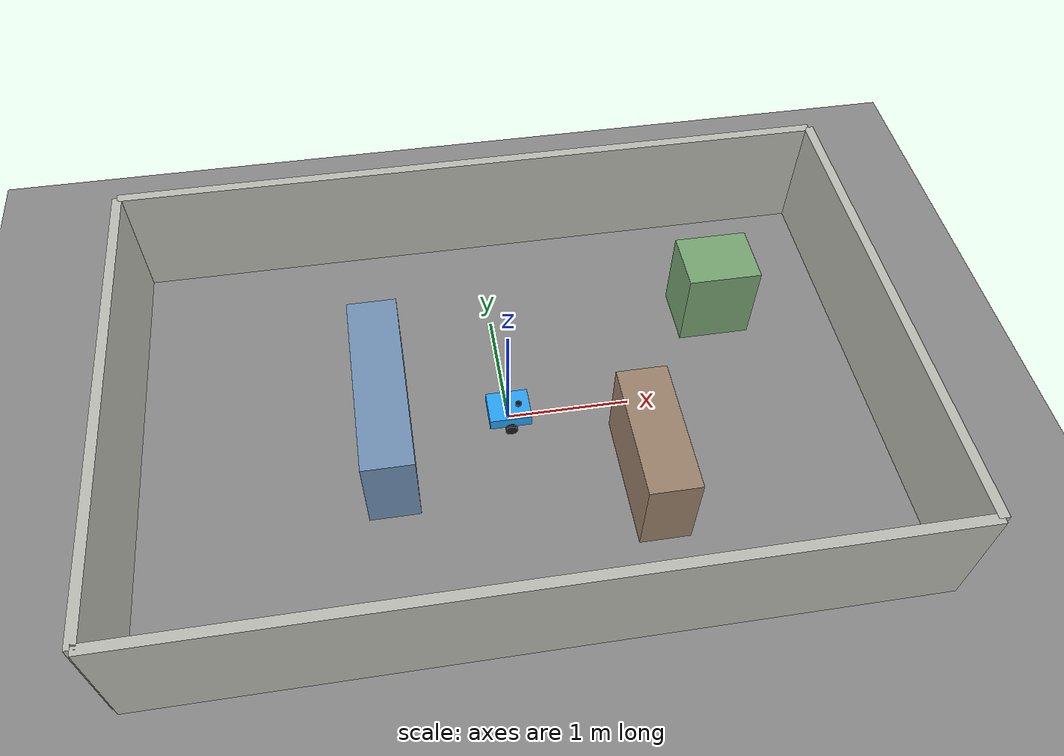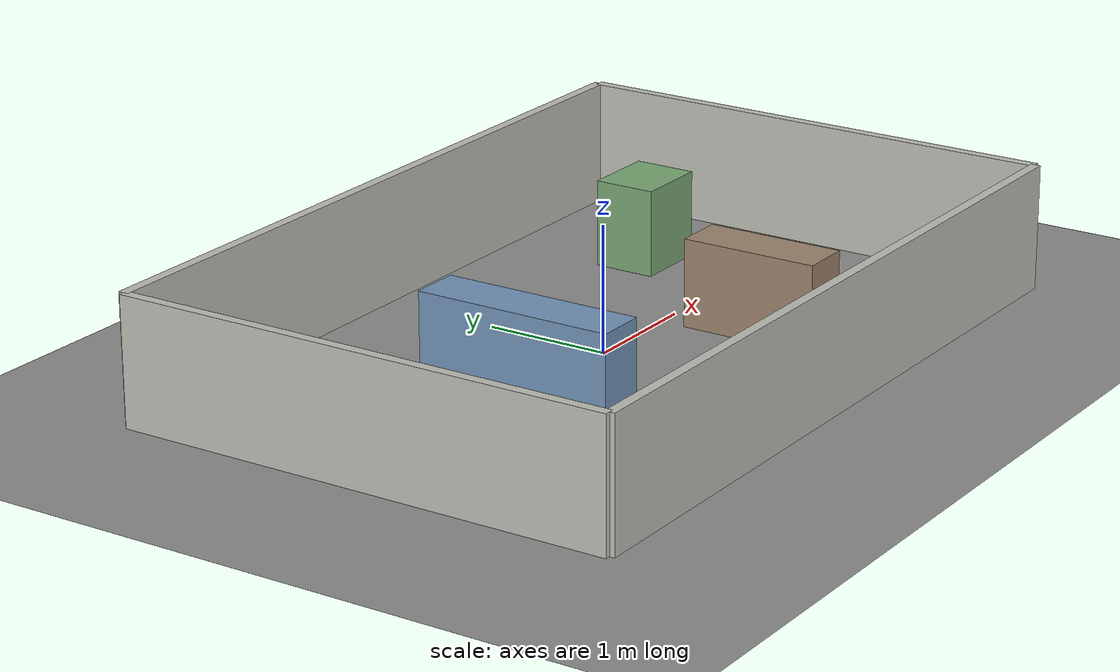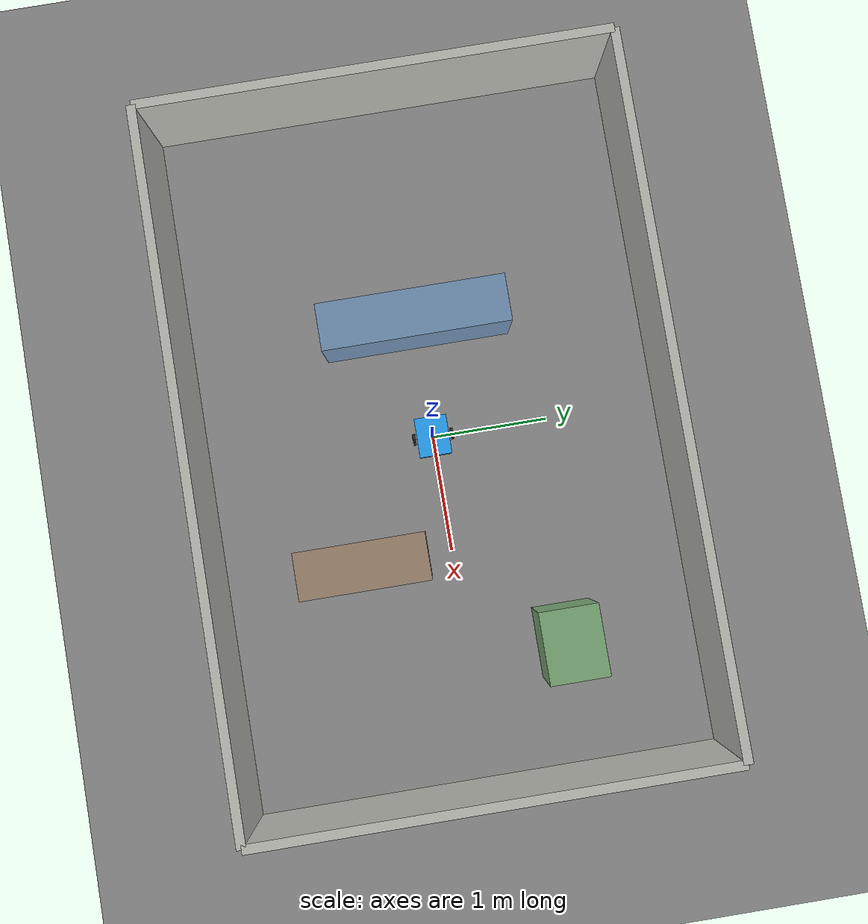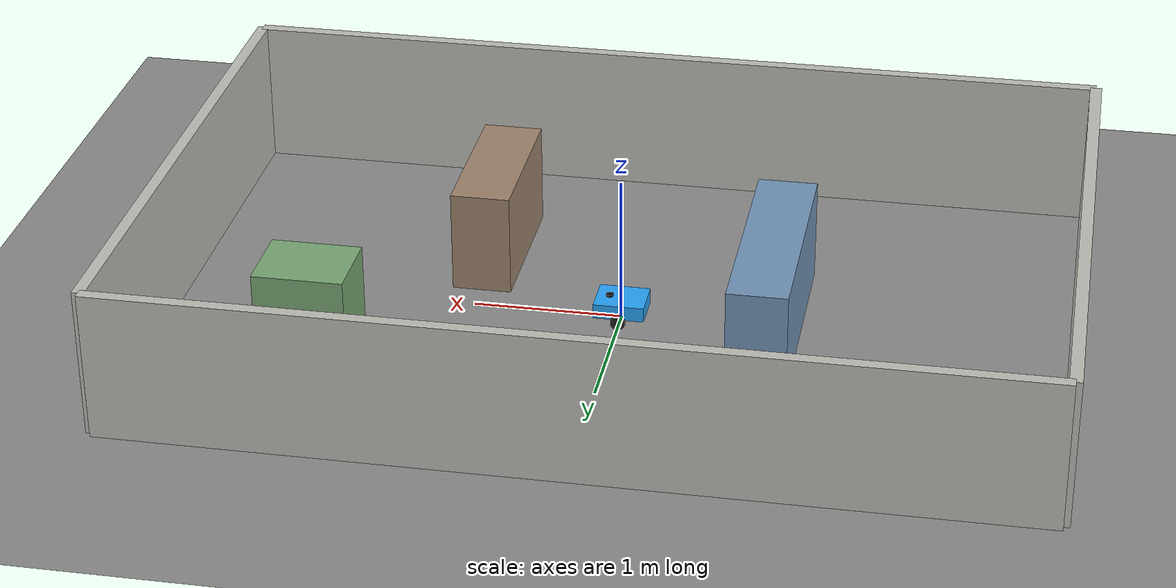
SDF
<?xml version="1.0" ?>
<sdf version="1.10">
  <world name="room">
    <plugin filename="gz-sim-physics-system" name="gz::sim::systems::Physics"/>
    <plugin filename="gz-sim-user-commands-system" name="gz::sim::systems::UserCommands"/>
    <plugin filename="gz-sim-scene-broadcaster-system" name="gz::sim::systems::SceneBroadcaster"/>
    <plugin filename="gz-sim-sensors-system" name="gz::sim::systems::Sensors">
      <render_engine>ogre2</render_engine>
    </plugin>

    <gravity>0 0 -9.81</gravity>
    <magnetic_field>0 0 0</magnetic_field>
    <atmosphere type="adiabatic"/>

    <light name="sun" type="directional">
      <pose>0 0 6 0 0 0</pose>
      <diffuse>0.8 0.8 0.8 1</diffuse>
      <specular>0.2 0.2 0.2 1</specular>
      <direction>-0.5 0.1 -0.9</direction>
    </light>

    <model name="ground_plane">
      <static>true</static>
      <link name="link">
        <collision name="collision">
          <geometry>
            <plane>
              <normal>0 0 1</normal>
              <size>8 6</size>
            </plane>
          </geometry>
        </collision>
        <visual name="visual">
          <geometry>
            <plane>
              <normal>0 0 1</normal>
              <size>8 6</size>
            </plane>
          </geometry>
          <material>
            <ambient>0.55 0.55 0.55 1</ambient>
            <diffuse>0.55 0.55 0.55 1</diffuse>
          </material>
        </visual>
      </link>
    </model>

    <model name="north_wall">
      <static>true</static>
      <pose>0 2 0.5 0 0 0</pose>
      <link name="link">
        <collision name="collision">
          <geometry><box><size>6 0.08 1</size></box></geometry>
        </collision>
        <visual name="visual">
          <geometry><box><size>6 0.08 1</size></box></geometry>
          <material><ambient>0.75 0.75 0.72 1</ambient><diffuse>0.75 0.75 0.72 1</diffuse></material>
        </visual>
      </link>
    </model>

    <model name="south_wall">
      <static>true</static>
      <pose>0 -2 0.5 0 0 0</pose>
      <link name="link">
        <collision name="collision">
          <geometry><box><size>6 0.08 1</size></box></geometry>
        </collision>
        <visual name="visual">
          <geometry><box><size>6 0.08 1</size></box></geometry>
          <material><ambient>0.75 0.75 0.72 1</ambient><diffuse>0.75 0.75 0.72 1</diffuse></material>
        </visual>
      </link>
    </model>

    <model name="east_wall">
      <static>true</static>
      <pose>3 0 0.5 0 0 0</pose>
      <link name="link">
        <collision name="collision">
          <geometry><box><size>0.08 4 1</size></box></geometry>
        </collision>
        <visual name="visual">
          <geometry><box><size>0.08 4 1</size></box></geometry>
          <material><ambient>0.75 0.75 0.72 1</ambient><diffuse>0.75 0.75 0.72 1</diffuse></material>
        </visual>
      </link>
    </model>

    <model name="west_wall">
      <static>true</static>
      <pose>-3 0 0.5 0 0 0</pose>
      <link name="link">
        <collision name="collision">
          <geometry><box><size>0.08 4 1</size></box></geometry>
        </collision>
        <visual name="visual">
          <geometry><box><size>0.08 4 1</size></box></geometry>
          <material><ambient>0.75 0.75 0.72 1</ambient><diffuse>0.75 0.75 0.72 1</diffuse></material>
        </visual>
      </link>
    </model>

    <model name="obstacle_1">
      <static>true</static>
      <pose>-1.0 0 0.35 0 0 0</pose>
      <link name="link">
        <collision name="collision">
          <geometry><box><size>0.4 1.6 0.7</size></box></geometry>
        </collision>
        <visual name="visual">
          <geometry><box><size>0.4 1.6 0.7</size></box></geometry>
          <material><ambient>0.45 0.58 0.72 1</ambient><diffuse>0.45 0.58 0.72 1</diffuse></material>
        </visual>
      </link>
    </model>

    <model name="obstacle_2">
      <static>true</static>
      <pose>1.0 -0.75 0.35 0 0 0</pose>
      <link name="link">
        <collision name="collision">
          <geometry><box><size>0.4 1.1 0.7</size></box></geometry>
        </collision>
        <visual name="visual">
          <geometry><box><size>0.4 1.1 0.7</size></box></geometry>
          <material><ambient>0.62 0.52 0.43 1</ambient><diffuse>0.62 0.52 0.43 1</diffuse></material>
        </visual>
      </link>
    </model>

    <model name="obstacle_3">
      <static>true</static>
      <pose>1.9 0.85 0.35 0 0 0</pose>
      <link name="link">
        <collision name="collision">
          <geometry><box><size>0.6 0.5 0.7</size></box></geometry>
        </collision>
        <visual name="visual">
          <geometry><box><size>0.6 0.5 0.7</size></box></geometry>
          <material><ambient>0.48 0.66 0.46 1</ambient><diffuse>0.48 0.66 0.46 1</diffuse></material>
        </visual>
      </link>
    </model>

    <model name="robotont_proxy">
      <pose>0 0 0 0 0 0</pose>
      <link name="base_footprint">
        <pose>0 0 0 0 0 0</pose>
        <inertial>
          <mass>3.0</mass>
          <inertia>
            <ixx>0.0246</ixx>
            <iyy>0.0208</iyy>
            <izz>0.0432</izz>
          </inertia>
        </inertial>
        <collision name="base_collision">
          <pose>0 0 0.105 0 0 0</pose>
          <geometry><box><size>0.34 0.28 0.10</size></box></geometry>
        </collision>
        <visual name="base_visual">
          <pose>0 0 0.105 0 0 0</pose>
          <geometry><box><size>0.34 0.28 0.10</size></box></geometry>
          <material><ambient>0.16 0.65 0.98 1</ambient><diffuse>0.16 0.65 0.98 1</diffuse></material>
        </visual>
      </link>

      <link name="left_wheel">
        <pose>0 0.165 0.05 1.57079632679 0 0</pose>
        <inertial>
          <mass>0.25</mass>
          <inertia>
            <ixx>0.0002</ixx>
            <iyy>0.0002</iyy>
            <izz>0.0002</izz>
          </inertia>
        </inertial>
        <collision name="collision">
          <geometry><cylinder><radius>0.05</radius><length>0.026</length></cylinder></geometry>
        </collision>
        <visual name="visual">
          <geometry><cylinder><radius>0.05</radius><length>0.026</length></cylinder></geometry>
          <material><ambient>0.12 0.12 0.12 1</ambient><diffuse>0.12 0.12 0.12 1</diffuse></material>
        </visual>
      </link>

      <link name="right_wheel">
        <pose>0 -0.165 0.05 1.57079632679 0 0</pose>
        <inertial>
          <mass>0.25</mass>
          <inertia>
            <ixx>0.0002</ixx>
            <iyy>0.0002</iyy>
            <izz>0.0002</izz>
          </inertia>
        </inertial>
        <collision name="collision">
          <geometry><cylinder><radius>0.05</radius><length>0.026</length></cylinder></geometry>
        </collision>
        <visual name="visual">
          <geometry><cylinder><radius>0.05</radius><length>0.026</length></cylinder></geometry>
          <material><ambient>0.12 0.12 0.12 1</ambient><diffuse>0.12 0.12 0.12 1</diffuse></material>
        </visual>
      </link>

      <link name="base_scan">
        <pose>0.08 0 0.16 0 0 0</pose>
        <inertial>
          <mass>0.05</mass>
          <inertia>
            <ixx>0.00001</ixx>
            <iyy>0.00001</iyy>
            <izz>0.00001</izz>
          </inertia>
        </inertial>
        <visual name="visual">
          <geometry><cylinder><radius>0.025</radius><length>0.02</length></cylinder></geometry>
          <material><ambient>0.05 0.05 0.05 1</ambient><diffuse>0.05 0.05 0.05 1</diffuse></material>
        </visual>
        <sensor name="lidar" type="gpu_lidar">
          <pose>0 0 0 0 0 0</pose>
          <topic>/scan</topic>
          <gz_frame_id>base_scan</gz_frame_id>
          <update_rate>10</update_rate>
          <lidar>
            <scan>
              <horizontal>
                <samples>361</samples>
                <resolution>1</resolution>
                <min_angle>-3.14159265359</min_angle>
                <max_angle>3.14159265359</max_angle>
              </horizontal>
            </scan>
            <range>
              <min>0.08</min>
              <max>6.0</max>
              <resolution>0.01</resolution>
            </range>
          </lidar>
          <always_on>true</always_on>
          <visualize>false</visualize>
        </sensor>
      </link>

      <joint name="left_wheel_joint" type="revolute">
        <parent>base_footprint</parent>
        <child>left_wheel</child>
        <axis>
          <xyz>0 1 0</xyz>
          <limit>
            <lower>-1e16</lower>
            <upper>1e16</upper>
          </limit>
        </axis>
      </joint>

      <joint name="right_wheel_joint" type="revolute">
        <parent>base_footprint</parent>
        <child>right_wheel</child>
        <axis>
          <xyz>0 1 0</xyz>
          <limit>
            <lower>-1e16</lower>
            <upper>1e16</upper>
          </limit>
        </axis>
      </joint>

      <joint name="base_scan_joint" type="fixed">
        <parent>base_footprint</parent>
        <child>base_scan</child>
      </joint>

      <plugin filename="gz-sim-diff-drive-system" name="gz::sim::systems::DiffDrive">
        <left_joint>left_wheel_joint</left_joint>
        <right_joint>right_wheel_joint</right_joint>
        <wheel_separation>0.33</wheel_separation>
        <wheel_radius>0.05</wheel_radius>
        <odom_publish_frequency>50</odom_publish_frequency>
        <topic>/cmd_vel</topic>
        <odom_topic>/odom</odom_topic>
        <frame_id>odom</frame_id>
        <child_frame_id>base_footprint</child_frame_id>
      </plugin>
    </model>
  </world>
</sdf>
